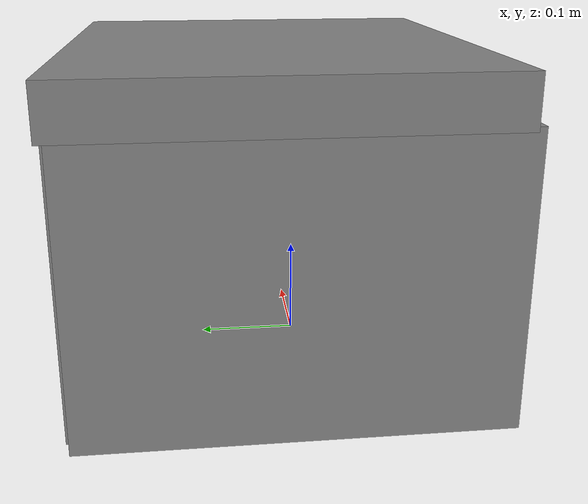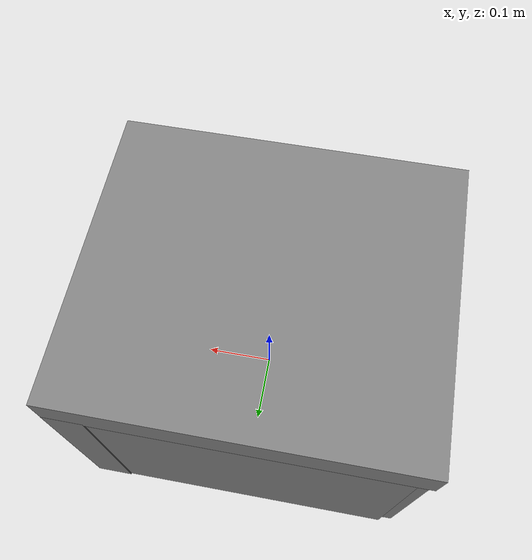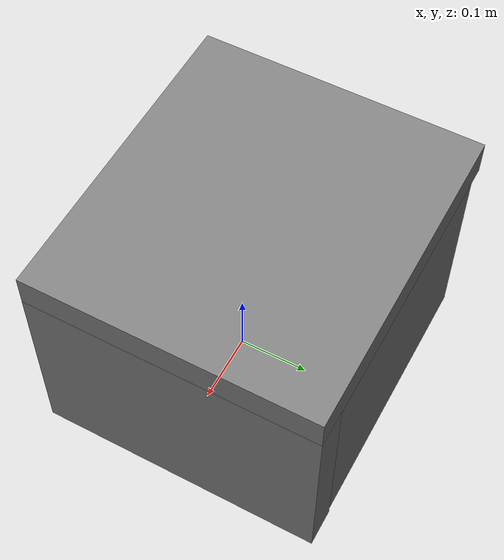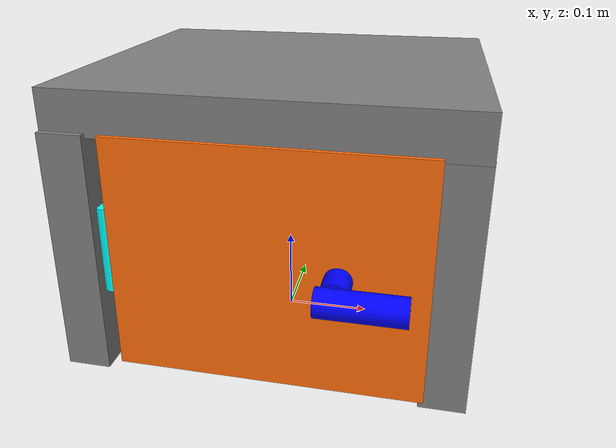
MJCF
<mujoco model="door_box_model">
    <compiler angle="radian" meshdir="door_new/meshes/" autolimits="true"/>
    <size/>
    <default/>
    <worldbody>
        <body name="door_new">
            <geom size="0.015 0.05" pos="-0.1675 -0.15548 0.14469" type="cylinder" rgba="0 1 1 1"/>
            <geom size="0.2 0.025 0.14" pos="-0.2 0.018 0.14" quat="0.707388 0 0 0.706825" type="box"/>
            <geom size="0.2 0.025 0.14" pos="0.2 0.025 0.14" quat="0.707105 0 0 -0.707108" type="box"/>
            <geom size="0.2 0.025 0.14" pos="-0.0069 0.1984 0.14" quat="1.32679e-06 0 0 1" type="box"/>
            <geom size="0.225 0.025 0.2" pos="-0.00029 0.02489 0.3" quat="0.707388 0.706825 0 0" type="box"/>
            <body name="door" pos="-0.1595 -0.15548 0.14469">
                <inertial pos="0.0726684 -0.0147745 -3.30614e-06" quat="0.702988 0.703348 0.0735543 0.0754944" mass="3.3692" diaginertia="0.239172 0.227454 0.192582"/>
                <joint name="door_hinge_joint" pos="0 0 0" axis="0 0 1" limited="false" range="0 -1.57"/>
                <geom size="0.17 0.025 0.135" pos="0.17 0 0" type="box" rgba="1 0.423529 0.0392157 1"/>
                <geom size="0.015 0.02" pos="0.247 -0.0372 0" quat="0.500398 0.5 -0.5 0.499602" type="cylinder" rgba="0 0 1 1"/>
                <geom size="0.015 0.045" pos="0.274976 -0.0672223 -2.22781e-05" quat="0.000563312 0.707388 -0.000562864 0.706825" type="cylinder" rgba="0 0 1 1"/>
            </body>
        </body>
    </worldbody>
    <equality/>
</mujoco>
